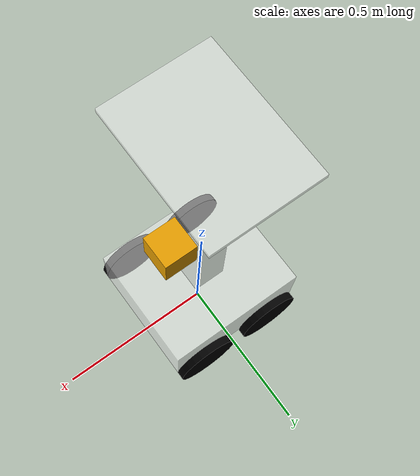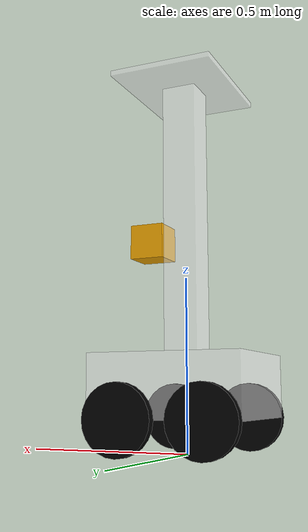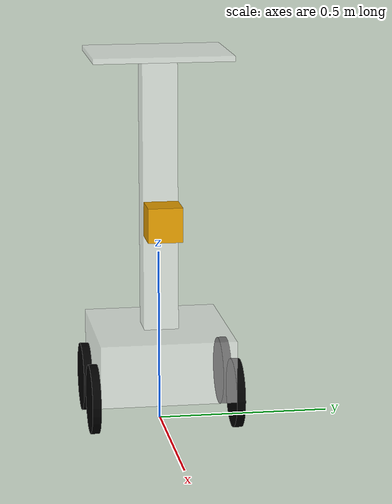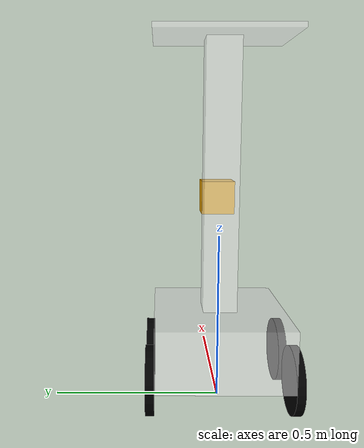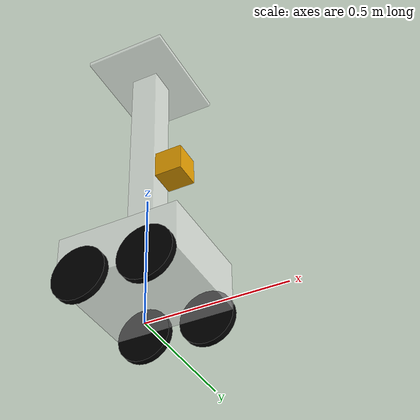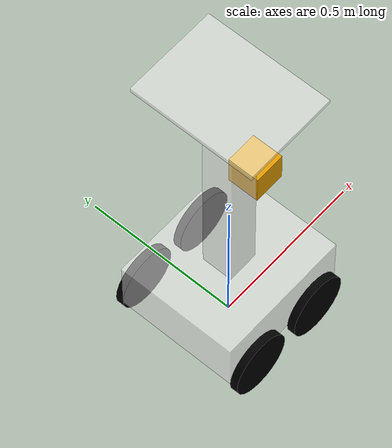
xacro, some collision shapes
<?xml version="1.0"?>
<robot name="robosim"
       xmlns:xacro="http://www.ros.org/wiki/xacro" >

<!-- Para -->
<!-- Define constant parameter -->
    <xacro:property name="PI" value="3.1416"/>
    <xacro:property name="cL" value="0.44"  />  <!-- length of chassis -->
	<xacro:property name="cW" value="0.39"  />  <!-- width of chassis -->
	<xacro:property name="cH" value="0.18"  />  <!-- height of chassis -->
	<xacro:property name="wR" value="0.1"   />  <!-- radius of wheel -->
	<xacro:property name="wW" value="0.025" />  <!-- width of wheel -->

<!-- Body -->
    <!-- Base_Footprint (ground mark) -->
        <link name="base_footprint">
		    <visual>
		        <origin xyz="0 0 0" rpy="0 0 0" />
		        <geometry>
		            <box size="0.001 0.001 0.001" />
		        </geometry>
		    </visual>

		    <inertial>
		        <mass value="0.0001" />
		        <origin xyz="0 0 0" />
		        <inertia ixx="0.0001" ixy="0.0" ixz="0.0"
		        		 iyy="0.0001" iyz="0.0"
		        		 izz="0.0001" />
		    </inertial>
        </link>

        <joint name="base_footprint_joint" type="fixed">
            <parent link="base_footprint" />
            <child  link="base_link" />
            <origin xyz="0 0 ${wR}" rpy="0 0 0" />
        </joint>

    <!-- Base_Link (Action body/chassis of the robot) -->
        <link name="base_link">
            <visual>
                <geometry>
                    <box size="${cL} ${cW} ${cH}" />
                </geometry>
                <!-- set orgion at bottom of the base -->
                <origin xyz="0 0 ${cH/2}" rpy="0 0 0" />
                <material name="white">
         			<color rgba="1 1 1 .5"/>
         		</material>
            </visual>

            <collision>
			    <geometry>
           			<box size="${cL} ${cW} ${cH}"/>
         		</geometry>
		    </collision>

		    <inertial>
			    <mass value="10"/>
			    <inertia ixx="1.0" ixy="0.0" ixz="0.0"
					     iyy="1.0" iyz="0.0"
					     izz="1.0"/>
		    </inertial>
        </link>

        <gazebo reference="base_link">
            <material>Gazebo/Orange</material>
        </gazebo>

    <!-- Desk leg attached to base -->
        <link name="desk_leg_link">
            <visual>
                <geometry>
                    <box size="0.1 0.1 0.8" />
                </geometry>
                <origin xyz="0 0 0" rpy="0 0 0" />
                <material name="white">
         			<color rgba="1 1 1 .5"/>
         		</material>
            </visual>

            <collision>
			    <geometry>
                    <box size="0.1 0.1 0.8" />
			    </geometry>
		    </collision>

		    <inertial>
		        <mass  value="0.0001" />
		        <inertia ixx="0.0001" ixy="0.0" ixz="0.0"
		        		 iyy="0.0001" iyz="0.0"
		        		 izz="0.0001" />
		    </inertial>
        </link>

        <joint name="base_link_to_desk_leg_joint" type="fixed">
            <parent link="base_link" />
            <child  link="desk_leg_link" />
            <origin xyz="0 0 ${cH+0.4}" rpy="0 0 0" />
        </joint>

        <gazebo reference="desk_leg_link">
            <material>Gazebo/White</material>
        </gazebo>

    <!-- Desk-top on top of the leg -->
        <link name="desk_top_link">
            <visual>
                <geometry>
                    <box size="0.3 0.4 0.015" />
                </geometry>
                <origin xyz="0 0 0" rpy="0 0 0" />
                <material name="white">
         			<color rgba="1 1 1 .5"/>
         		</material>
            </visual>

            <collision>
			    <geometry>
                    <box size="0.3 0.4 0.015" />
			    </geometry>
		    </collision>

		    <inertial>
		        <mass  value="0.0001" />
		        <inertia ixx="0.0001" ixy="0.0" ixz="0.0"
		        		 iyy="0.0001" iyz="0.0"
		        		 izz="0.0001" />
		    </inertial>
        </link>

        <joint name="desk_leg_to_top_joint" type="fixed">
            <parent link="desk_leg_link" />
            <child  link="desk_top_link" />
            <origin xyz="0 0 0.4" rpy="0 0 0" />
        </joint>

        <gazebo reference="desk_top_link">
            <material>Gazebo/Orange</material>
        </gazebo>

<!-- Wheels -->
    <!-- Wheels attached to base  -->
        <xacro:macro name="base_wheel" params="index mass negX negY">
            <link name="wheel${index}_link">
                <visual>
                    <geometry>
                        <cylinder length="${wW}" radius="${wR}" />
                    </geometry>
                    <origin xyz="0 0 0" rpy="0 0 0" />
                    <material name="black">
             			<color rgba="0 0 0 1"/>
             		</material>
                </visual>

                <collision>
			        <geometry>
                        <cylinder length="${wW}" radius="${wR}"/>
			        </geometry>
		        </collision>

		        <inertial>
			        <mass value="${mass}"/>
			        <inertia ixx="1" ixy="0.0" ixz="0.0"
		        		 	 iyy="1" iyz="0.0"
		        		 	 izz="1" />
		        </inertial>
            </link>

            <joint name="base_to_wheel${index}_joint" type="continuous">
	            <parent link="base_link"/>
                <child  link="wheel${index}_link"/>
                <origin rpy="${-PI/2} 0 0"
                        xyz="${negX*(cL/2-wR)} ${negY*(cW/2+wW/2)} 0"/>
                <axis xyz="0 0 1" />
                <limit effort="100" velocity="1000" />
	        </joint>

	        <gazebo reference="wheel${index}_link">
                <material>Gazebo/Black</material>
            </gazebo>
        </xacro:macro>

        <!-- Add robot wheels -->
        <xacro:base_wheel index="1" mass="0.1" negX=" 1" negY=" 1" />
        <xacro:base_wheel index="2" mass="0.1" negX=" 1" negY="-1" />
        <xacro:base_wheel index="3" mass="0.1" negX="-1" negY=" 1" />
        <xacro:base_wheel index="4" mass="0.1" negX="-1" negY="-1" />

    <!-- Add drive plugin -->
	    <gazebo>
		    <plugin name="skid_steer_drive_controller"
		            filename="libgazebo_ros_skid_steer_drive.so">
			    <leftFrontJoint>base_to_wheel1_joint</leftFrontJoint>
			    <rightFrontJoint>base_to_wheel2_joint</rightFrontJoint>
			    <leftRearJoint>base_to_wheel3_joint</leftRearJoint>
			    <rightRearJoint>base_to_wheel4_joint</rightRearJoint>
			    <wheelSeparation>${cW+wW}</wheelSeparation>
			    <wheelDiameter>${2*wR}</wheelDiameter>
			    <broadcastTF>1</broadcastTF>
			    <odometryFrame>odom</odometryFrame>
			    <robotBaseFrame>base_footprint</robotBaseFrame>
			    <commandTopic>cmd_vel</commandTopic>
			    <robotNamespace>/robosim</robotNamespace>
			    <odometryTopic>odom</odometryTopic>
			    <updateRate>100.0</updateRate>
			    <alwaysOn>true</alwaysOn>
			    <torque>2</torque>
			</plugin>
	    </gazebo>

<!-- Laser -->
    <!-- Add laser sensor -->
	    <link name="laser_link">
            <visual>
                <origin xyz="0 0 0" rpy="0 0 0"/>
                <geometry>
                    <mesh filename="package://robosim/model/sick-lms1xx.dae"/>
                </geometry>
            </visual>
            <collision>
                <geometry>
                    <box size="0.1 0.1 0.1"/>
                </geometry>
            </collision>
            <inertial>
                <mass value="1e-5"/>
                <inertia ixx="1e-6" ixy="0.0" ixz="0.0"
                         iyy="1e-6" iyz="0.0"
                         izz="1e-6"/>
            </inertial>
        </link>

        <joint name="base_to_laser" type="fixed">
            <parent link="base_link"/>
            <child link="laser_link"/>
            <origin rpy="0 0 0" xyz="${cL/2-wR-0.015} 0 ${cH+0.33}"/>
        </joint>

        <!-- laser plugin -->
        <gazebo reference="laser_link">
            <sensor type="ray" name="laser_sensor">
                <pose>0 0 0 0 0 0</pose>
                <visualize>true</visualize>
                <update_rate>40</update_rate>
                <ray>
                    <scan>
                        <horizontal>
                            <samples>720</samples>
                            <resolution>1</resolution>
                            <min_angle>${-3*PI/4}</min_angle>
                            <max_angle>${3*PI/4}</max_angle>
                        </horizontal>
                    </scan>
                    <range>
                        <min>0.10</min>
                        <max>30.0</max>
                        <resolution>0.01</resolution>
                    </range>
                    <noise>
                        <type>gaussian</type>
                        <mean>0.0</mean>
                        <stddev>0.01</stddev>
                    </noise>
                </ray>

                <plugin name="laser_controller"
                        filename="libgazebo_ros_laser.so">
                    <topicName>robosim/laser/scan</topicName>
                	<frameName>laser_link</frameName>
                </plugin>
            </sensor>
        </gazebo>

</robot>
